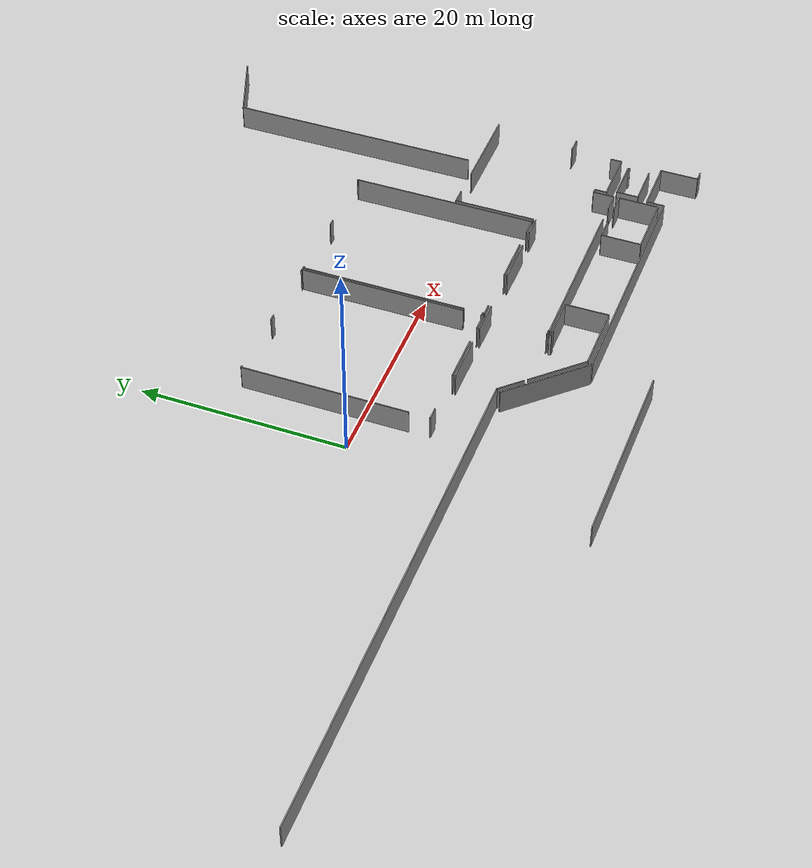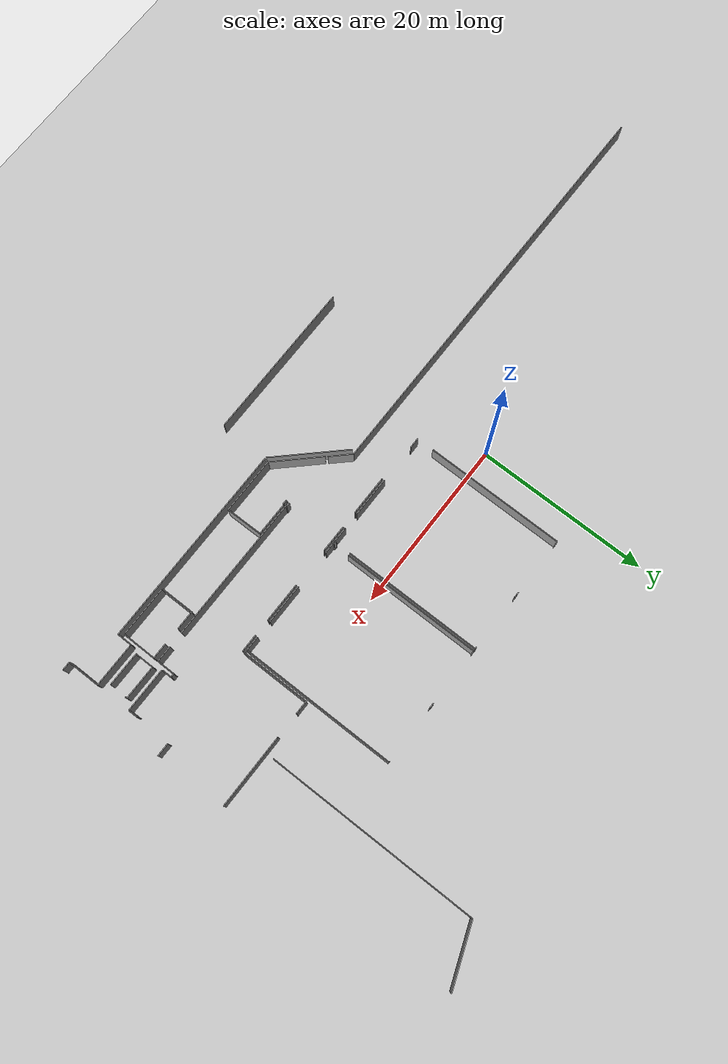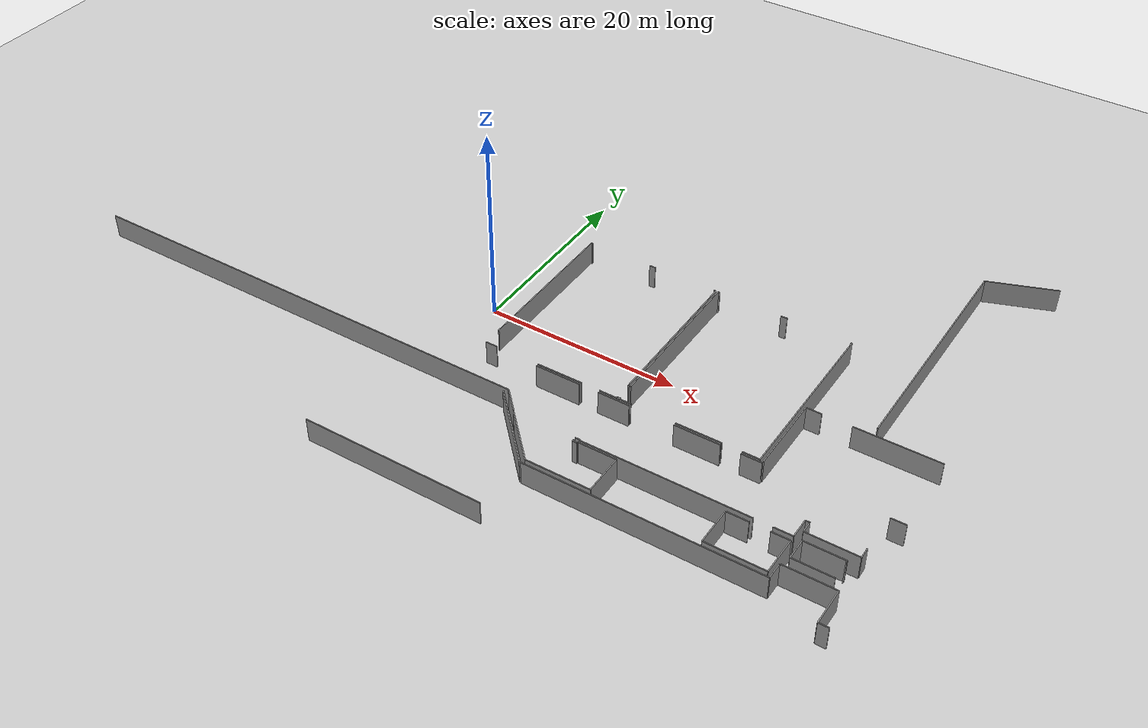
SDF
<sdf version="1.6">
 <world name="default">
  <model name="ground_plane">
   <static>1</static>
   <link name="link">
    <collision name="collision">
     <geometry><plane><normal>0 0 1</normal><size>100 100</size></plane></geometry>
     <surface><friction><ode><mu>100</mu><mu2>50</mu2></ode></friction></surface>
    </collision>
    <visual name="visual">
     <cast_shadows>0</cast_shadows>
     <geometry><plane><normal>0 0 1</normal><size>100 100</size></plane></geometry>
     <material>
      <script><uri>file://media/materials/scripts/gazebo.material</uri><name>Gazebo/Grey</name></script>
     </material>
    </visual>
   </link>
  </model>
  <model name="0510032216_A-40">
   <static>1</static>
   <link name="Wall_90">
    <collision name="Wall_90_Collision">
     <geometry><box><size>9.09169630701 0.1 2.5</size></box></geometry>
     <pose>4.5458481535 0 1.25 0 0 0</pose>
    </collision>
    <visual name="Wall_90_Visual">
     <pose>4.5458481535 0 1.25 0 0 0</pose>
     <geometry><box><size>9.09169630701 0.1 2.5</size></box></geometry>
     <material>
      <script><uri>file://media/materials/scripts/gazebo.material</uri><name>Gazebo/Grey</name></script>
      <ambient>1 1 1 1</ambient>
     </material>
    </visual>
    <pose>78.1563462088 -43.1991240042 0 0 0 -0.811349942225</pose>
   </link>
   <link name="Wall_91">
    <collision name="Wall_91_Collision">
     <geometry><box><size>18.5977719237 0.1 2.5</size></box></geometry>
     <pose>9.29888596185 0 1.25 0 0 0</pose>
    </collision>
    <visual name="Wall_91_Visual">
     <pose>9.29888596185 0 1.25 0 0 0</pose>
     <geometry><box><size>18.5977719237 0.1 2.5</size></box></geometry>
     <material>
      <script><uri>file://media/materials/scripts/gazebo.material</uri><name>Gazebo/Grey</name></script>
      <ambient>1 1 1 1</ambient>
     </material>
    </visual>
    <pose>84.4161614879 -55.5603135811 0 0 0 3.14159265359</pose>
   </link>
   <link name="Wall_104">
    <collision name="Wall_104_Collision">
     <geometry><box><size>4.64557082553 0.1 2.5</size></box></geometry>
     <pose>2.32278541277 0 1.25 0 0 0</pose>
    </collision>
    <visual name="Wall_104_Visual">
     <pose>2.32278541277 0 1.25 0 0 0</pose>
     <geometry><box><size>4.64557082553 0.1 2.5</size></box></geometry>
     <material>
      <script><uri>file://media/materials/scripts/gazebo.material</uri><name>Gazebo/Grey</name></script>
      <ambient>1 1 1 1</ambient>
     </material>
    </visual>
    <pose>78.7342495319 -38.7602374076 0 0 0 0.0</pose>
   </link>
   <link name="Wall_105">
    <collision name="Wall_105_Collision">
     <geometry><box><size>3.24791316215 0.1 2.5</size></box></geometry>
     <pose>1.62395658108 0 1.25 0 0 0</pose>
    </collision>
    <visual name="Wall_105_Visual">
     <pose>1.62395658108 0 1.25 0 0 0</pose>
     <geometry><box><size>3.24791316215 0.1 2.5</size></box></geometry>
     <material>
      <script><uri>file://media/materials/scripts/gazebo.material</uri><name>Gazebo/Grey</name></script>
      <ambient>1 1 1 1</ambient>
     </material>
    </visual>
    <pose>85.3364649126 -38.7602374076 0 0 0 0.0</pose>
   </link>
   <link name="Wall_106">
    <collision name="Wall_106_Collision">
     <geometry><box><size>4.63109785127 0.1 2.5</size></box></geometry>
     <pose>2.31554892564 0 1.25 0 0 0</pose>
    </collision>
    <visual name="Wall_106_Visual">
     <pose>2.31554892564 0 1.25 0 0 0</pose>
     <geometry><box><size>4.63109785127 0.1 2.5</size></box></geometry>
     <material>
      <script><uri>file://media/materials/scripts/gazebo.material</uri><name>Gazebo/Grey</name></script>
      <ambient>1 1 1 1</ambient>
     </material>
    </visual>
    <pose>93.1283841686 -38.7602374076 0 0 0 0.0</pose>
   </link>
   <link name="Wall_107">
    <collision name="Wall_107_Collision">
     <geometry><box><size>2.05719363951 0.1 2.5</size></box></geometry>
     <pose>1.02859681975 0 1.25 0 0 0</pose>
    </collision>
    <visual name="Wall_107_Visual">
     <pose>1.02859681975 0 1.25 0 0 0</pose>
     <geometry><box><size>2.05719363951 0.1 2.5</size></box></geometry>
     <material>
      <script><uri>file://media/materials/scripts/gazebo.material</uri><name>Gazebo/Grey</name></script>
      <ambient>1 1 1 1</ambient>
     </material>
    </visual>
    <pose>99.7210778557 -38.7602374076 0 0 0 0.0</pose>
   </link>
   <link name="Wall_108">
    <collision name="Wall_108_Collision">
     <geometry><box><size>1.50937886819 0.1 2.5</size></box></geometry>
     <pose>0.754689434094 0 1.25 0 0 0</pose>
    </collision>
    <visual name="Wall_108_Visual">
     <pose>0.754689434094 0 1.25 0 0 0</pose>
     <geometry><box><size>1.50937886819 0.1 2.5</size></box></geometry>
     <material>
      <script><uri>file://media/materials/scripts/gazebo.material</uri><name>Gazebo/Grey</name></script>
      <ambient>1 1 1 1</ambient>
     </material>
    </visual>
    <pose>113.523470975 -38.7602374076 0 0 0 0.0</pose>
   </link>
   <link name="Wall_113">
    <collision name="Wall_113_Collision">
     <geometry><box><size>0.435458786936 0.1 2.5</size></box></geometry>
     <pose>0.217729393468 0 1.25 0 0 0</pose>
    </collision>
    <visual name="Wall_113_Visual">
     <pose>0.217729393468 0 1.25 0 0 0</pose>
     <geometry><box><size>0.435458786936 0.1 2.5</size></box></geometry>
     <material>
      <script><uri>file://media/materials/scripts/gazebo.material</uri><name>Gazebo/Grey</name></script>
      <ambient>1 1 1 1</ambient>
     </material>
    </visual>
    <pose>108.254292697 -42.7742025582 0 0 0 3.14159265359</pose>
   </link>
   <link name="Wall_114">
    <collision name="Wall_114_Collision">
     <geometry><box><size>2.07788745358 0.1 2.5</size></box></geometry>
     <pose>1.03894372679 0 1.25 0 0 0</pose>
    </collision>
    <visual name="Wall_114_Visual">
     <pose>1.03894372679 0 1.25 0 0 0</pose>
     <geometry><box><size>2.07788745358 0.1 2.5</size></box></geometry>
     <material>
      <script><uri>file://media/materials/scripts/gazebo.material</uri><name>Gazebo/Grey</name></script>
      <ambient>1 1 1 1</ambient>
     </material>
    </visual>
    <pose>107.81883391 -42.7742025582 0 0 0 -1.57079632679</pose>
   </link>
   <link name="Wall_115">
    <collision name="Wall_115_Collision">
     <geometry><box><size>1.86422064938 0.1 2.5</size></box></geometry>
     <pose>0.93211032469 0 1.25 0 0 0</pose>
    </collision>
    <visual name="Wall_115_Visual">
     <pose>0.93211032469 0 1.25 0 0 0</pose>
     <geometry><box><size>1.86422064938 0.1 2.5</size></box></geometry>
     <material>
      <script><uri>file://media/materials/scripts/gazebo.material</uri><name>Gazebo/Grey</name></script>
      <ambient>1 1 1 1</ambient>
     </material>
    </visual>
    <pose>107.81883391 -44.8520900117 0 0 0 3.14159265359</pose>
   </link>
   <link name="Wall_116">
    <collision name="Wall_116_Collision">
     <geometry><box><size>16.8592376297 0.1 2.5</size></box></geometry>
     <pose>8.42961881487 0 1.25 0 0 0</pose>
    </collision>
    <visual name="Wall_116_Visual">
     <pose>8.42961881487 0 1.25 0 0 0</pose>
     <geometry><box><size>16.8592376297 0.1 2.5</size></box></geometry>
     <material>
      <script><uri>file://media/materials/scripts/gazebo.material</uri><name>Gazebo/Grey</name></script>
      <ambient>1 1 1 1</ambient>
     </material>
    </visual>
    <pose>104.151585362 -44.8520900117 0 0 0 3.14159265359</pose>
   </link>
   <link name="Wall_117">
    <collision name="Wall_117_Collision">
     <geometry><box><size>0.0870917573872 0.1 2.5</size></box></geometry>
     <pose>0.0435458786936 0 1.25 0 0 0</pose>
    </collision>
    <visual name="Wall_117_Visual">
     <pose>0.0435458786936 0 1.25 0 0 0</pose>
     <geometry><box><size>0.0870917573872 0.1 2.5</size></box></geometry>
     <material>
      <script><uri>file://media/materials/scripts/gazebo.material</uri><name>Gazebo/Grey</name></script>
      <ambient>1 1 1 1</ambient>
     </material>
    </visual>
    <pose>87.2923477322 -44.8520900117 0 0 0 1.57079632679</pose>
   </link>
   <link name="Wall_118">
    <collision name="Wall_118_Collision">
     <geometry><box><size>0.486368108674 0.1 2.5</size></box></geometry>
     <pose>0.243184054337 0 1.25 0 0 0</pose>
    </collision>
    <visual name="Wall_118_Visual">
     <pose>0.243184054337 0 1.25 0 0 0</pose>
     <geometry><box><size>0.486368108674 0.1 2.5</size></box></geometry>
     <material>
      <script><uri>file://media/materials/scripts/gazebo.material</uri><name>Gazebo/Grey</name></script>
      <ambient>1 1 1 1</ambient>
     </material>
    </visual>
    <pose>87.2923477322 -44.7649982544 0 0 0 3.14159265359</pose>
   </link>
   <link name="Wall_119">
    <collision name="Wall_119_Collision">
     <geometry><box><size>2.7243523513 0.1 2.5</size></box></geometry>
     <pose>1.36217617565 0 1.25 0 0 0</pose>
    </collision>
    <visual name="Wall_119_Visual">
     <pose>1.36217617565 0 1.25 0 0 0</pose>
     <geometry><box><size>2.7243523513 0.1 2.5</size></box></geometry>
     <material>
      <script><uri>file://media/materials/scripts/gazebo.material</uri><name>Gazebo/Grey</name></script>
      <ambient>1 1 1 1</ambient>
     </material>
    </visual>
    <pose>80.3429079252 -44.7649982544 0 0 0 2.33095099075</pose>
   </link>
   <link name="Wall_120">
    <collision name="Wall_120_Collision">
     <geometry><box><size>48.7580552263 0.1 2.5</size></box></geometry>
     <pose>24.3790276131 0 1.25 0 0 0</pose>
    </collision>
    <visual name="Wall_120_Visual">
     <pose>24.3790276131 0 1.25 0 0 0</pose>
     <geometry><box><size>48.7580552263 0.1 2.5</size></box></geometry>
     <material>
      <script><uri>file://media/materials/scripts/gazebo.material</uri><name>Gazebo/Grey</name></script>
      <ambient>1 1 1 1</ambient>
     </material>
    </visual>
    <pose>78.4657377726 -42.7905798711 0 0 0 3.14134789698</pose>
   </link>
   <link name="Wall_141">
    <collision name="Wall_141_Collision">
     <geometry><box><size>1.79718792649 0.1 2.5</size></box></geometry>
     <pose>0.898593963246 0 1.25 0 0 0</pose>
    </collision>
    <visual name="Wall_141_Visual">
     <pose>0.898593963246 0 1.25 0 0 0</pose>
     <geometry><box><size>1.79718792649 0.1 2.5</size></box></geometry>
     <material>
      <script><uri>file://media/materials/scripts/gazebo.material</uri><name>Gazebo/Grey</name></script>
      <ambient>1 1 1 1</ambient>
     </material>
    </visual>
    <pose>87.1308598089 -38.5064525344 0 0 0 3.14159265359</pose>
   </link>
   <link name="Wall_142">
    <collision name="Wall_142_Collision">
     <geometry><box><size>4.67108896436 0.1 2.5</size></box></geometry>
     <pose>2.33554448218 0 1.25 0 0 0</pose>
    </collision>
    <visual name="Wall_142_Visual">
     <pose>2.33554448218 0 1.25 0 0 0</pose>
     <geometry><box><size>4.67108896436 0.1 2.5</size></box></geometry>
     <material>
      <script><uri>file://media/materials/scripts/gazebo.material</uri><name>Gazebo/Grey</name></script>
      <ambient>1 1 1 1</ambient>
     </material>
    </visual>
    <pose>83.4170184403 -38.5064525344 0 0 0 3.14159265359</pose>
   </link>
   <link name="Wall_143">
    <collision name="Wall_143_Collision">
     <geometry><box><size>1.19922556892 0.1 2.5</size></box></geometry>
     <pose>0.599612784461 0 1.25 0 0 0</pose>
    </collision>
    <visual name="Wall_143_Visual">
     <pose>0.599612784461 0 1.25 0 0 0</pose>
     <geometry><box><size>1.19922556892 0.1 2.5</size></box></geometry>
     <material>
      <script><uri>file://media/materials/scripts/gazebo.material</uri><name>Gazebo/Grey</name></script>
      <ambient>1 1 1 1</ambient>
     </material>
    </visual>
    <pose>74.1823721713 -38.5064525344 0 0 0 3.14159265359</pose>
   </link>
   <link name="Wall_145">
    <collision name="Wall_145_Collision">
     <geometry><box><size>16.1528549211 0.1 2.5</size></box></geometry>
     <pose>8.07642746056 0 1.25 0 0 0</pose>
    </collision>
    <visual name="Wall_145_Visual">
     <pose>8.07642746056 0 1.25 0 0 0</pose>
     <geometry><box><size>16.1528549211 0.1 2.5</size></box></geometry>
     <material>
      <script><uri>file://media/materials/scripts/gazebo.material</uri><name>Gazebo/Grey</name></script>
      <ambient>1 1 1 1</ambient>
     </material>
    </visual>
    <pose>72.9831466023 -36.5066429682 0 0 0 1.57079632679</pose>
   </link>
   <link name="Wall_146">
    <collision name="Wall_146_Collision">
     <geometry><box><size>0.176468721237 0.1 2.5</size></box></geometry>
     <pose>0.0882343606183 0 1.25 0 0 0</pose>
    </collision>
    <visual name="Wall_146_Visual">
     <pose>0.0882343606183 0 1.25 0 0 0</pose>
     <geometry><box><size>0.176468721237 0.1 2.5</size></box></geometry>
     <material>
      <script><uri>file://media/materials/scripts/gazebo.material</uri><name>Gazebo/Grey</name></script>
      <ambient>1 1 1 1</ambient>
     </material>
    </visual>
    <pose>72.9831466023 -20.3537880471 0 0 0 0.0</pose>
   </link>
   <link name="Wall_147">
    <collision name="Wall_147_Collision">
     <geometry><box><size>0.638842162059 0.1 2.5</size></box></geometry>
     <pose>0.31942108103 0 1.25 0 0 0</pose>
    </collision>
    <visual name="Wall_147_Visual">
     <pose>0.31942108103 0 1.25 0 0 0</pose>
     <geometry><box><size>0.638842162059 0.1 2.5</size></box></geometry>
     <material>
      <script><uri>file://media/materials/scripts/gazebo.material</uri><name>Gazebo/Grey</name></script>
      <ambient>1 1 1 1</ambient>
     </material>
    </visual>
    <pose>79.7359316977 -20.3537880471 0 0 0 0.0</pose>
   </link>
   <link name="Wall_148">
    <collision name="Wall_148_Collision">
     <geometry><box><size>0.217729393468 0.1 2.5</size></box></geometry>
     <pose>0.108864696734 0 1.25 0 0 0</pose>
    </collision>
    <visual name="Wall_148_Visual">
     <pose>0.108864696734 0 1.25 0 0 0</pose>
     <geometry><box><size>0.217729393468 0.1 2.5</size></box></geometry>
     <material>
      <script><uri>file://media/materials/scripts/gazebo.material</uri><name>Gazebo/Grey</name></script>
      <ambient>1 1 1 1</ambient>
     </material>
    </visual>
    <pose>86.9149077983 -20.3537880471 0 0 0 0.0</pose>
   </link>
   <link name="Wall_149">
    <collision name="Wall_149_Collision">
     <geometry><box><size>16.1652966008 0.1 2.5</size></box></geometry>
     <pose>8.08264830038 0 1.25 0 0 0</pose>
    </collision>
    <visual name="Wall_149_Visual">
     <pose>8.08264830038 0 1.25 0 0 0</pose>
     <geometry><box><size>16.1652966008 0.1 2.5</size></box></geometry>
     <material>
      <script><uri>file://media/materials/scripts/gazebo.material</uri><name>Gazebo/Grey</name></script>
      <ambient>1 1 1 1</ambient>
     </material>
    </visual>
    <pose>87.1326371917 -20.3537880471 0 0 0 -1.57079632679</pose>
   </link>
   <link name="Wall_150">
    <collision name="Wall_150_Collision">
     <geometry><box><size>0.238048975267 0.1 2.5</size></box></geometry>
     <pose>0.119024487634 0 1.25 0 0 0</pose>
    </collision>
    <visual name="Wall_150_Visual">
     <pose>0.119024487634 0 1.25 0 0 0</pose>
     <geometry><box><size>0.238048975267 0.1 2.5</size></box></geometry>
     <material>
      <script><uri>file://media/materials/scripts/gazebo.material</uri><name>Gazebo/Grey</name></script>
      <ambient>1 1 1 1</ambient>
     </material>
    </visual>
    <pose>87.1326371917 -38.2684101946 0 0 0 -1.57826285471</pose>
   </link>
   <link name="Wall_151">
    <collision name="Wall_151_Collision">
     <geometry><box><size>1.68940235503 0.1 2.5</size></box></geometry>
     <pose>0.844701177516 0 1.25 0 0 0</pose>
    </collision>
    <visual name="Wall_151_Visual">
     <pose>0.844701177516 0 1.25 0 0 0</pose>
     <geometry><box><size>1.68940235503 0.1 2.5</size></box></geometry>
     <material>
      <script><uri>file://media/materials/scripts/gazebo.material</uri><name>Gazebo/Grey</name></script>
      <ambient>1 1 1 1</ambient>
     </material>
    </visual>
    <pose>101.425080141 -38.4922334719 0 0 0 3.14159265359</pose>
   </link>
   <link name="Wall_152">
    <collision name="Wall_152_Collision">
     <geometry><box><size>4.62805090932 0.1 2.5</size></box></geometry>
     <pose>2.31402545466 0 1.25 0 0 0</pose>
    </collision>
    <visual name="Wall_152_Visual">
     <pose>2.31402545466 0 1.25 0 0 0</pose>
     <geometry><box><size>4.62805090932 0.1 2.5</size></box></geometry>
     <material>
      <script><uri>file://media/materials/scripts/gazebo.material</uri><name>Gazebo/Grey</name></script>
      <ambient>1 1 1 1</ambient>
     </material>
    </visual>
    <pose>97.7589741962 -38.4922334719 0 0 0 3.14159265359</pose>
   </link>
   <link name="Wall_153">
    <collision name="Wall_153_Collision">
     <geometry><box><size>1.21179420446 0.1 2.5</size></box></geometry>
     <pose>0.605897102231 0 1.25 0 0 0</pose>
    </collision>
    <visual name="Wall_153_Visual">
     <pose>0.605897102231 0 1.25 0 0 0</pose>
     <geometry><box><size>1.21179420446 0.1 2.5</size></box></geometry>
     <material>
      <script><uri>file://media/materials/scripts/gazebo.material</uri><name>Gazebo/Grey</name></script>
      <ambient>1 1 1 1</ambient>
     </material>
    </visual>
    <pose>88.598851049 -38.4922334719 0 0 0 3.14159265359</pose>
   </link>
   <link name="Wall_154">
    <collision name="Wall_154_Collision">
     <geometry><box><size>0.18687910623 0.1 2.5</size></box></geometry>
     <pose>0.0934395531152 0 1.25 0 0 0</pose>
    </collision>
    <visual name="Wall_154_Visual">
     <pose>0.0934395531152 0 1.25 0 0 0</pose>
     <geometry><box><size>0.18687910623 0.1 2.5</size></box></geometry>
     <material>
      <script><uri>file://media/materials/scripts/gazebo.material</uri><name>Gazebo/Grey</name></script>
      <ambient>1 1 1 1</ambient>
     </material>
    </visual>
    <pose>87.3870568445 -38.4922334719 0 0 0 1.57079632679</pose>
   </link>
   <link name="Wall_155">
    <collision name="Wall_155_Collision">
     <geometry><box><size>16.1669470276 0.1 2.5</size></box></geometry>
     <pose>8.08347351382 0 1.25 0 0 0</pose>
    </collision>
    <visual name="Wall_155_Visual">
     <pose>8.08347351382 0 1.25 0 0 0</pose>
     <geometry><box><size>16.1669470276 0.1 2.5</size></box></geometry>
     <material>
      <script><uri>file://media/materials/scripts/gazebo.material</uri><name>Gazebo/Grey</name></script>
      <ambient>1 1 1 1</ambient>
     </material>
    </visual>
    <pose>87.3870568445 -36.5280985178 0 0 0 1.57079632679</pose>
   </link>
   <link name="Wall_156">
    <collision name="Wall_156_Collision">
     <geometry><box><size>0.181166090075 0.1 2.5</size></box></geometry>
     <pose>0.0905830450376 0 1.25 0 0 0</pose>
    </collision>
    <visual name="Wall_156_Visual">
     <pose>0.0905830450376 0 1.25 0 0 0</pose>
     <geometry><box><size>0.181166090075 0.1 2.5</size></box></geometry>
     <material>
      <script><uri>file://media/materials/scripts/gazebo.material</uri><name>Gazebo/Grey</name></script>
      <ambient>1 1 1 1</ambient>
     </material>
    </visual>
    <pose>87.3870568445 -20.3611514901 0 0 0 0.0</pose>
   </link>
   <link name="Wall_157">
    <collision name="Wall_157_Collision">
     <geometry><box><size>0.676548068683 0.1 2.5</size></box></geometry>
     <pose>0.338274034342 0 1.25 0 0 0</pose>
    </collision>
    <visual name="Wall_157_Visual">
     <pose>0.338274034342 0 1.25 0 0 0</pose>
     <geometry><box><size>0.676548068683 0.1 2.5</size></box></geometry>
     <material>
      <script><uri>file://media/materials/scripts/gazebo.material</uri><name>Gazebo/Grey</name></script>
      <ambient>1 1 1 1</ambient>
     </material>
    </visual>
    <pose>94.1002316945 -20.3611514901 0 0 0 0.0</pose>
   </link>
   <link name="Wall_158">
    <collision name="Wall_158_Collision">
     <geometry><box><size>0.120354207002 0.1 2.5</size></box></geometry>
     <pose>0.0601771035008 0 1.25 0 0 0</pose>
    </collision>
    <visual name="Wall_158_Visual">
     <pose>0.0601771035008 0 1.25 0 0 0</pose>
     <geometry><box><size>0.120354207002 0.1 2.5</size></box></geometry>
     <material>
      <script><uri>file://media/materials/scripts/gazebo.material</uri><name>Gazebo/Grey</name></script>
      <ambient>1 1 1 1</ambient>
     </material>
    </visual>
    <pose>101.304979846 -20.3611514901 0 0 0 0.0</pose>
   </link>
   <link name="Wall_159">
    <collision name="Wall_159_Collision">
     <geometry><box><size>18.1310819836 0.1 2.5</size></box></geometry>
     <pose>9.06554099178 0 1.25 0 0 0</pose>
    </collision>
    <visual name="Wall_159_Visual">
     <pose>9.06554099178 0 1.25 0 0 0</pose>
     <geometry><box><size>18.1310819836 0.1 2.5</size></box></geometry>
     <material>
      <script><uri>file://media/materials/scripts/gazebo.material</uri><name>Gazebo/Grey</name></script>
      <ambient>1 1 1 1</ambient>
     </material>
    </visual>
    <pose>101.425334053 -20.3611514901 0 0 0 -1.57081033102</pose>
   </link>
   <link name="Wall_160">
    <collision name="Wall_160_Collision">
     <geometry><box><size>6.56857206335 0.1 2.5</size></box></geometry>
     <pose>3.28428603168 0 1.25 0 0 0</pose>
    </collision>
    <visual name="Wall_160_Visual">
     <pose>3.28428603168 0 1.25 0 0 0</pose>
     <geometry><box><size>6.56857206335 0.1 2.5</size></box></geometry>
     <material>
      <script><uri>file://media/materials/scripts/gazebo.material</uri><name>Gazebo/Grey</name></script>
      <ambient>1 1 1 1</ambient>
     </material>
    </visual>
    <pose>91.2427079697 -49.336172914 0 0 0 3.14159265359</pose>
   </link>
   <link name="Wall_161">
    <collision name="Wall_161_Collision">
     <geometry><box><size>6.00726757673 0.1 2.5</size></box></geometry>
     <pose>3.00363378836 0 1.25 0 0 0</pose>
    </collision>
    <visual name="Wall_161_Visual">
     <pose>3.00363378836 0 1.25 0 0 0</pose>
     <geometry><box><size>6.00726757673 0.1 2.5</size></box></geometry>
     <material>
      <script><uri>file://media/materials/scripts/gazebo.material</uri><name>Gazebo/Grey</name></script>
      <ambient>1 1 1 1</ambient>
     </material>
    </visual>
    <pose>84.6741359063 -49.336172914 0 0 0 2.3327455236</pose>
   </link>
   <link name="Wall_162">
    <collision name="Wall_162_Collision">
     <geometry><box><size>0.233344970959 0.1 2.5</size></box></geometry>
     <pose>0.116672485479 0 1.25 0 0 0</pose>
    </collision>
    <visual name="Wall_162_Visual">
     <pose>0.116672485479 0 1.25 0 0 0</pose>
     <geometry><box><size>0.233344970959 0.1 2.5</size></box></geometry>
     <material>
      <script><uri>file://media/materials/scripts/gazebo.material</uri><name>Gazebo/Grey</name></script>
      <ambient>1 1 1 1</ambient>
     </material>
    </visual>
    <pose>86.8000126956 -44.989964135 0 0 0 -1.57079632679</pose>
   </link>
   <link name="Wall_163">
    <collision name="Wall_163_Collision">
     <geometry><box><size>0.470498619354 0.1 2.5</size></box></geometry>
     <pose>0.235249309677 0 1.25 0 0 0</pose>
    </collision>
    <visual name="Wall_163_Visual">
     <pose>0.235249309677 0 1.25 0 0 0</pose>
     <geometry><box><size>0.470498619354 0.1 2.5</size></box></geometry>
     <material>
      <script><uri>file://media/materials/scripts/gazebo.material</uri><name>Gazebo/Grey</name></script>
      <ambient>1 1 1 1</ambient>
     </material>
    </visual>
    <pose>86.8000126956 -45.2233091059 0 0 0 0.0</pose>
   </link>
   <link name="Wall_164">
    <collision name="Wall_164_Collision">
     <geometry><box><size>0.109943822008 0.1 2.5</size></box></geometry>
     <pose>0.0549719110039 0 1.25 0 0 0</pose>
    </collision>
    <visual name="Wall_164_Visual">
     <pose>0.0549719110039 0 1.25 0 0 0</pose>
     <geometry><box><size>0.109943822008 0.1 2.5</size></box></geometry>
     <material>
      <script><uri>file://media/materials/scripts/gazebo.material</uri><name>Gazebo/Grey</name></script>
      <ambient>1 1 1 1</ambient>
     </material>
    </visual>
    <pose>87.2705113149 -45.2233091059 0 0 0 1.57079632679</pose>
   </link>
   <link name="Wall_165">
    <collision name="Wall_165_Collision">
     <geometry><box><size>3.9416002793 0.1 2.5</size></box></geometry>
     <pose>1.97080013965 0 1.25 0 0 0</pose>
    </collision>
    <visual name="Wall_165_Visual">
     <pose>1.97080013965 0 1.25 0 0 0</pose>
     <geometry><box><size>3.9416002793 0.1 2.5</size></box></geometry>
     <material>
      <script><uri>file://media/materials/scripts/gazebo.material</uri><name>Gazebo/Grey</name></script>
      <ambient>1 1 1 1</ambient>
     </material>
    </visual>
    <pose>87.2705113149 -45.1133652839 0 0 0 0.0</pose>
   </link>
   <link name="Wall_166">
    <collision name="Wall_166_Collision">
     <geometry><box><size>4.2229184717 0.1 2.5</size></box></geometry>
     <pose>2.11145923585 0 1.25 0 0 0</pose>
    </collision>
    <visual name="Wall_166_Visual">
     <pose>2.11145923585 0 1.25 0 0 0</pose>
     <geometry><box><size>4.2229184717 0.1 2.5</size></box></geometry>
     <material>
      <script><uri>file://media/materials/scripts/gazebo.material</uri><name>Gazebo/Grey</name></script>
      <ambient>1 1 1 1</ambient>
     </material>
    </visual>
    <pose>91.2121115942 -45.1133652839 0 0 0 -1.5635509482</pose>
   </link>
   <link name="Wall_167">
    <collision name="Wall_167_Collision">
     <geometry><box><size>5.95004284762 0.1 2.5</size></box></geometry>
     <pose>2.97502142381 0 1.25 0 0 0</pose>
    </collision>
    <visual name="Wall_167_Visual">
     <pose>2.97502142381 0 1.25 0 0 0</pose>
     <geometry><box><size>5.95004284762 0.1 2.5</size></box></geometry>
     <material>
      <script><uri>file://media/materials/scripts/gazebo.material</uri><name>Gazebo/Grey</name></script>
      <ambient>1 1 1 1</ambient>
     </material>
    </visual>
    <pose>107.815279144 -49.3203034246 0 0 0 3.14159265359</pose>
   </link>
   <link name="Wall_168">
    <collision name="Wall_168_Collision">
     <geometry><box><size>3.9224299362 0.1 2.5</size></box></geometry>
     <pose>1.9612149681 0 1.25 0 0 0</pose>
    </collision>
    <visual name="Wall_168_Visual">
     <pose>1.9612149681 0 1.25 0 0 0</pose>
     <geometry><box><size>3.9224299362 0.1 2.5</size></box></geometry>
     <material>
      <script><uri>file://media/materials/scripts/gazebo.material</uri><name>Gazebo/Grey</name></script>
      <ambient>1 1 1 1</ambient>
     </material>
    </visual>
    <pose>101.865236297 -49.3203034246 0 0 0 1.57079632679</pose>
   </link>
   <link name="Wall_169">
    <collision name="Wall_169_Collision">
     <geometry><box><size>2.20154251436 0.1 2.5</size></box></geometry>
     <pose>1.10077125718 0 1.25 0 0 0</pose>
    </collision>
    <visual name="Wall_169_Visual">
     <pose>1.10077125718 0 1.25 0 0 0</pose>
     <geometry><box><size>2.20154251436 0.1 2.5</size></box></geometry>
     <material>
      <script><uri>file://media/materials/scripts/gazebo.material</uri><name>Gazebo/Grey</name></script>
      <ambient>1 1 1 1</ambient>
     </material>
    </visual>
    <pose>101.865236297 -45.3978734884 0 0 0 0.0</pose>
   </link>
   <link name="Wall_170">
    <collision name="Wall_170_Collision">
     <geometry><box><size>1.81432697496 0.1 2.5</size></box></geometry>
     <pose>0.907163487479 0 1.25 0 0 0</pose>
    </collision>
    <visual name="Wall_170_Visual">
     <pose>0.907163487479 0 1.25 0 0 0</pose>
     <geometry><box><size>1.81432697496 0.1 2.5</size></box></geometry>
     <material>
      <script><uri>file://media/materials/scripts/gazebo.material</uri><name>Gazebo/Grey</name></script>
      <ambient>1 1 1 1</ambient>
     </material>
    </visual>
    <pose>106.024312058 -45.3978734884 0 0 0 0.0</pose>
   </link>
   <link name="Wall_171">
    <collision name="Wall_171_Collision">
     <geometry><box><size>3.92249949507 0.1 2.5</size></box></geometry>
     <pose>1.96124974753 0 1.25 0 0 0</pose>
    </collision>
    <visual name="Wall_171_Visual">
     <pose>1.96124974753 0 1.25 0 0 0</pose>
     <geometry><box><size>3.92249949507 0.1 2.5</size></box></geometry>
     <material>
      <script><uri>file://media/materials/scripts/gazebo.material</uri><name>Gazebo/Grey</name></script>
      <ambient>1 1 1 1</ambient>
     </material>
    </visual>
    <pose>107.838639033 -45.3978734884 0 0 0 -1.57675171988</pose>
   </link>
   <link name="Wall_173">
    <collision name="Wall_173_Collision">
     <geometry><box><size>7.99961913226 0.1 2.5</size></box></geometry>
     <pose>3.99980956613 0 1.25 0 0 0</pose>
    </collision>
    <visual name="Wall_173_Visual">
     <pose>3.99980956613 0 1.25 0 0 0</pose>
     <geometry><box><size>7.99961913226 0.1 2.5</size></box></geometry>
     <material>
      <script><uri>file://media/materials/scripts/gazebo.material</uri><name>Gazebo/Grey</name></script>
      <ambient>1 1 1 1</ambient>
     </material>
    </visual>
    <pose>101.788047101 -38.532224585 0 0 0 1.57079632679</pose>
   </link>
   <link name="Wall_174">
    <collision name="Wall_174_Collision">
     <geometry><box><size>1.5539403942 0.1 2.5</size></box></geometry>
     <pose>0.776970197099 0 1.25 0 0 0</pose>
    </collision>
    <visual name="Wall_174_Visual">
     <pose>0.776970197099 0 1.25 0 0 0</pose>
     <geometry><box><size>1.5539403942 0.1 2.5</size></box></geometry>
     <material>
      <script><uri>file://media/materials/scripts/gazebo.material</uri><name>Gazebo/Grey</name></script>
      <ambient>1 1 1 1</ambient>
     </material>
    </visual>
    <pose>101.788047101 -30.5326054528 0 0 0 0.0</pose>
   </link>
   <link name="Wall_175">
    <collision name="Wall_175_Collision">
     <geometry><box><size>8.51734535183 0.1 2.5</size></box></geometry>
     <pose>4.25867267591 0 1.25 0 0 0</pose>
    </collision>
    <visual name="Wall_175_Visual">
     <pose>4.25867267591 0 1.25 0 0 0</pose>
     <geometry><box><size>8.51734535183 0.1 2.5</size></box></geometry>
     <material>
      <script><uri>file://media/materials/scripts/gazebo.material</uri><name>Gazebo/Grey</name></script>
      <ambient>1 1 1 1</ambient>
     </material>
    </visual>
    <pose>106.278350843 -30.5326054528 0 0 0 0.0</pose>
   </link>
   <link name="Wall_177">
    <collision name="Wall_177_Collision">
     <geometry><box><size>5.13790586219 0.1 2.5</size></box></geometry>
     <pose>2.56895293109 0 1.25 0 0 0</pose>
    </collision>
    <visual name="Wall_177_Visual">
     <pose>2.56895293109 0 1.25 0 0 0</pose>
     <geometry><box><size>5.13790586219 0.1 2.5</size></box></geometry>
     <material>
      <script><uri>file://media/materials/scripts/gazebo.material</uri><name>Gazebo/Grey</name></script>
      <ambient>1 1 1 1</ambient>
     </material>
    </visual>
    <pose>113.385977719 -43.9608594915 0 0 0 3.14159265359</pose>
   </link>
   <link name="Wall_178">
    <collision name="Wall_178_Collision">
     <geometry><box><size>1.10464341257 0.1 2.5</size></box></geometry>
     <pose>0.552321706287 0 1.25 0 0 0</pose>
    </collision>
    <visual name="Wall_178_Visual">
     <pose>0.552321706287 0 1.25 0 0 0</pose>
     <geometry><box><size>1.10464341257 0.1 2.5</size></box></geometry>
     <material>
      <script><uri>file://media/materials/scripts/gazebo.material</uri><name>Gazebo/Grey</name></script>
      <ambient>1 1 1 1</ambient>
     </material>
    </visual>
    <pose>108.248071857 -43.9608594915 0 0 0 1.57079632679</pose>
   </link>
   <link name="Wall_179">
    <collision name="Wall_179_Collision">
     <geometry><box><size>1.10467915984 0.1 2.5</size></box></geometry>
     <pose>0.55233957992 0 1.25 0 0 0</pose>
    </collision>
    <visual name="Wall_179_Visual">
     <pose>0.55233957992 0 1.25 0 0 0</pose>
     <geometry><box><size>1.10467915984 0.1 2.5</size></box></geometry>
     <material>
      <script><uri>file://media/materials/scripts/gazebo.material</uri><name>Gazebo/Grey</name></script>
      <ambient>1 1 1 1</ambient>
     </material>
    </visual>
    <pose>113.377090805 -42.856216079 0 0 0 -1.56275144806</pose>
   </link>
   <link name="Wall_197">
    <collision name="Wall_197_Collision">
     <geometry><box><size>3.97194274288 0.1 2.5</size></box></geometry>
     <pose>1.98597137144 0 1.25 0 0 0</pose>
    </collision>
    <visual name="Wall_197_Visual">
     <pose>1.98597137144 0 1.25 0 0 0</pose>
     <geometry><box><size>3.97194274288 0.1 2.5</size></box></geometry>
     <material>
      <script><uri>file://media/materials/scripts/gazebo.material</uri><name>Gazebo/Grey</name></script>
      <ambient>1 1 1 1</ambient>
     </material>
    </visual>
    <pose>112.590471959 -47.0733106929 0 0 0 3.14159265359</pose>
   </link>
   <link name="Wall_198">
    <collision name="Wall_198_Collision">
     <geometry><box><size>2.1704383153 0.1 2.5</size></box></geometry>
     <pose>1.08521915765 0 1.25 0 0 0</pose>
    </collision>
    <visual name="Wall_198_Visual">
     <pose>1.08521915765 0 1.25 0 0 0</pose>
     <geometry><box><size>2.1704383153 0.1 2.5</size></box></geometry>
     <material>
      <script><uri>file://media/materials/scripts/gazebo.material</uri><name>Gazebo/Grey</name></script>
      <ambient>1 1 1 1</ambient>
     </material>
    </visual>
    <pose>108.618529216 -47.0733106929 0 0 0 1.57079632679</pose>
   </link>
   <link name="Wall_199">
    <collision name="Wall_199_Collision">
     <geometry><box><size>3.95531151808 0.1 2.5</size></box></geometry>
     <pose>1.97765575904 0 1.25 0 0 0</pose>
    </collision>
    <visual name="Wall_199_Visual">
     <pose>1.97765575904 0 1.25 0 0 0</pose>
     <geometry><box><size>3.95531151808 0.1 2.5</size></box></geometry>
     <material>
      <script><uri>file://media/materials/scripts/gazebo.material</uri><name>Gazebo/Grey</name></script>
      <ambient>1 1 1 1</ambient>
     </material>
    </visual>
    <pose>108.618529216 -44.9028723776 0 0 0 0.0</pose>
   </link>
   <link name="Wall_200">
    <collision name="Wall_200_Collision">
     <geometry><box><size>0.207225733591 0.1 2.5</size></box></geometry>
     <pose>0.103612866796 0 1.25 0 0 0</pose>
    </collision>
    <visual name="Wall_200_Visual">
     <pose>0.103612866796 0 1.25 0 0 0</pose>
     <geometry><box><size>0.207225733591 0.1 2.5</size></box></geometry>
     <material>
      <script><uri>file://media/materials/scripts/gazebo.material</uri><name>Gazebo/Grey</name></script>
      <ambient>1 1 1 1</ambient>
     </material>
    </visual>
    <pose>112.573840734 -44.9028723776 0 0 0 -1.49045335776</pose>
   </link>
   <link name="Wall_230">
    <collision name="Wall_230_Collision">
     <geometry><box><size>24.6859428064 0.1 2.5</size></box></geometry>
     <pose>12.3429714032 0 1.25 0 0 0</pose>
    </collision>
    <visual name="Wall_230_Visual">
     <pose>12.3429714032 0 1.25 0 0 0</pose>
     <geometry><box><size>24.6859428064 0.1 2.5</size></box></geometry>
     <material>
      <script><uri>file://media/materials/scripts/gazebo.material</uri><name>Gazebo/Grey</name></script>
      <ambient>1 1 1 1</ambient>
     </material>
    </visual>
    <pose>108.213032025 -29.5691370172 0 0 0 1.57079632679</pose>
   </link>
   <link name="Wall_231">
    <collision name="Wall_231_Collision">
     <geometry><box><size>7.13858545641 0.1 2.5</size></box></geometry>
     <pose>3.56929272821 0 1.25 0 0 0</pose>
    </collision>
    <visual name="Wall_231_Visual">
     <pose>3.56929272821 0 1.25 0 0 0</pose>
     <geometry><box><size>7.13858545641 0.1 2.5</size></box></geometry>
     <material>
      <script><uri>file://media/materials/scripts/gazebo.material</uri><name>Gazebo/Grey</name></script>
      <ambient>1 1 1 1</ambient>
     </material>
    </visual>
    <pose>108.213032025 -4.88319421081 0 0 0 0.357284468696</pose>
   </link>
   <link name="Wall_238">
    <collision name="Wall_238_Collision">
     <geometry><box><size>23.6563303393 0.1 2.5</size></box></geometry>
     <pose>11.8281651696 0 1.25 0 0 0</pose>
    </collision>
    <visual name="Wall_238_Visual">
     <pose>11.8281651696 0 1.25 0 0 0</pose>
     <geometry><box><size>23.6563303393 0.1 2.5</size></box></geometry>
     <material>
      <script><uri>file://media/materials/scripts/gazebo.material</uri><name>Gazebo/Grey</name></script>
      <ambient>1 1 1 1</ambient>
     </material>
    </visual>
    <pose>84.5653346875 -49.8217792871 0 0 0 0.0</pose>
   </link>
   <link name="Wall_239">
    <collision name="Wall_239_Collision">
     <geometry><box><size>1.73307518964 0.1 2.5</size></box></geometry>
     <pose>0.86653759482 0 1.25 0 0 0</pose>
    </collision>
    <visual name="Wall_239_Visual">
     <pose>0.86653759482 0 1.25 0 0 0</pose>
     <geometry><box><size>1.73307518964 0.1 2.5</size></box></geometry>
     <material>
      <script><uri>file://media/materials/scripts/gazebo.material</uri><name>Gazebo/Grey</name></script>
      <ambient>1 1 1 1</ambient>
     </material>
    </visual>
    <pose>108.221665027 -49.8217792871 0 0 0 1.57079632679</pose>
   </link>
   <link name="Wall_240">
    <collision name="Wall_240_Collision">
     <geometry><box><size>5.16647094297 0.1 2.5</size></box></geometry>
     <pose>2.58323547148 0 1.25 0 0 0</pose>
    </collision>
    <visual name="Wall_240_Visual">
     <pose>2.58323547148 0 1.25 0 0 0</pose>
     <geometry><box><size>5.16647094297 0.1 2.5</size></box></geometry>
     <material>
      <script><uri>file://media/materials/scripts/gazebo.material</uri><name>Gazebo/Grey</name></script>
      <ambient>1 1 1 1</ambient>
     </material>
    </visual>
    <pose>108.221665027 -48.0887040975 0 0 0 0.0</pose>
   </link>
   <link name="Wall_241">
    <collision name="Wall_241_Collision">
     <geometry><box><size>3.74240644936 0.1 2.5</size></box></geometry>
     <pose>1.87120322468 0 1.25 0 0 0</pose>
    </collision>
    <visual name="Wall_241_Visual">
     <pose>1.87120322468 0 1.25 0 0 0</pose>
     <geometry><box><size>3.74240644936 0.1 2.5</size></box></geometry>
     <material>
      <script><uri>file://media/materials/scripts/gazebo.material</uri><name>Gazebo/Grey</name></script>
      <ambient>1 1 1 1</ambient>
     </material>
    </visual>
    <pose>113.38813597 -48.0887040975 0 0 0 -1.57079632679</pose>
   </link>
   <link name="Wall_242">
    <collision name="Wall_242_Collision">
     <geometry><box><size>1.0046021519 0.1 2.5</size></box></geometry>
     <pose>0.502301075951 0 1.25 0 0 0</pose>
    </collision>
    <visual name="Wall_242_Visual">
     <pose>0.502301075951 0 1.25 0 0 0</pose>
     <geometry><box><size>1.0046021519 0.1 2.5</size></box></geometry>
     <material>
      <script><uri>file://media/materials/scripts/gazebo.material</uri><name>Gazebo/Grey</name></script>
      <ambient>1 1 1 1</ambient>
     </material>
    </visual>
    <pose>113.38813597 -51.8311105469 0 0 0 0.0</pose>
   </link>
   <pose>-69.25 32.0461944965 0 0 0 0</pose>
  </model>
 </world>
</sdf>
